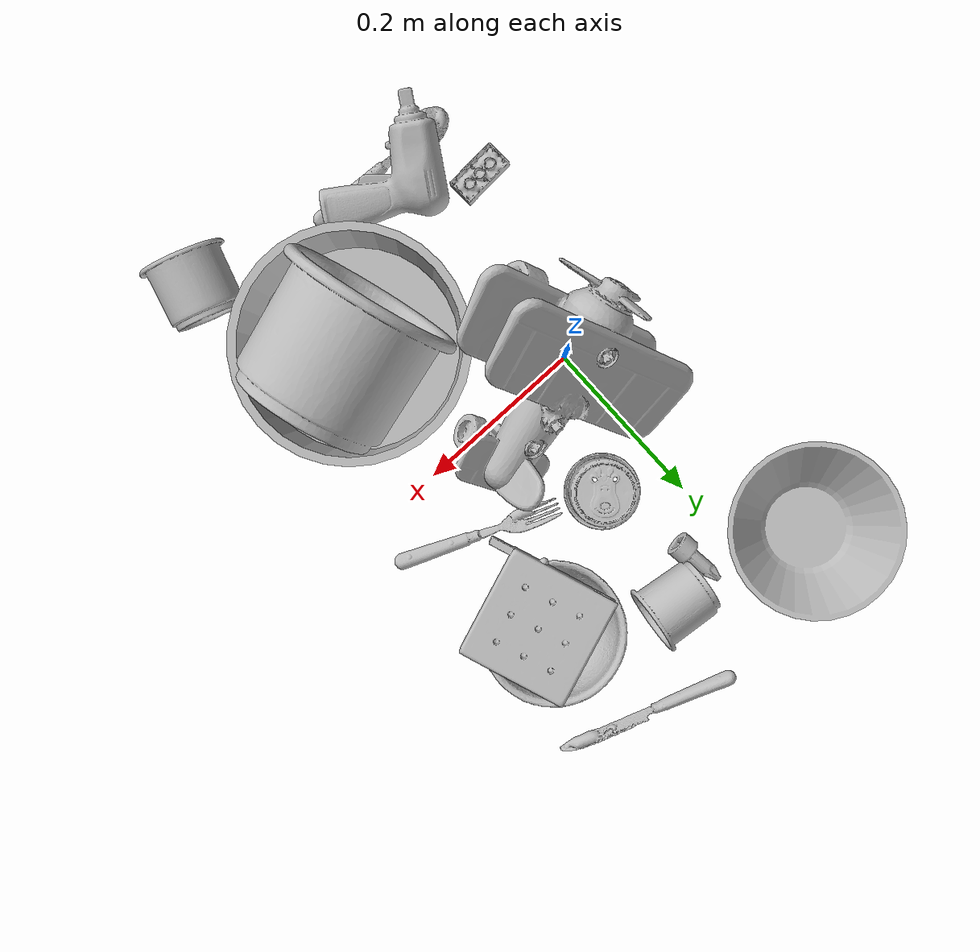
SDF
<sdf version="1.4">
  <world name="default">
    <light name="light1" type="point">
      <pose>0 0 1 0 0 0</pose>
      <diffuse>3 3 3 1</diffuse>
      <specular>3 3 3 1</specular>
    </light>
    <light name="light2" type="point">
      <pose>0 0.5 2 0 0 0</pose>
      <diffuse>1 1 1 1</diffuse>
      <specular>1 1 1 1</specular>
    </light>
    <light name="light3" type="point">
      <pose>0 0.5 2 0 0 0</pose>
      <diffuse>3 3 3 1</diffuse>
      <specular>3 3 3 1</specular>
    </light>
    <scene>
      <ambient>0.7 0.7 0.7</ambient>
    </scene>
    <model name="plate1">
      <link name="link_plate1">
        <collision name="default">
          <geometry>
            <mesh>
              <uri>model://pan_tefal/collision_meshes/collision.obj</uri>
              <scale>1.0 1.0 1.0</scale>
            </mesh>
          </geometry>
          <surface>
            <friction>
              <ode>
                <mu>0.5</mu>
                <mu2>0.5</mu2>
              </ode>
            </friction>
          <contact>
        <ode>
            <max_vel>0</max_vel>
            <min_depth>0.0001</min_depth>
            <kp>1e8</kp>
        </ode>
    </contact></surface>
        </collision>
        <visual name="default">
          <geometry>
            <mesh>
              <uri>model://pan_tefal/visual_meshes/visual.dae</uri>
              <scale>1.0 1.0 1.0</scale>
            </mesh>
          </geometry>
        </visual>
        <inertial>
          <mass>1.2414644956588745</mass>
          <pose>-0.0001800298341549933 3.278589065303095e-05 -0.00851493515074253 0.0008190165640447202 -0.0003301348973125405 -0.33185319573483557</pose>
          <inertia>
            <ixx>0.00856977</ixx>
            <iyy>0.008625018</iyy>
            <izz>0.015775295</izz>
            <ixy>0</ixy>
            <ixz>0</ixz>
            <iyz>0</iyz>
          </inertia>
        </inertial>
      </link>
      <pose>0.16648545861244202 -0.16408967971801758 0.03804996982216835 5.438720893274273e-07 -2.2654504921038066e-07 1.252859218004752</pose>
    </model>
    <model name="cup1">
      <link name="link_cup1">
        <collision name="default">
          <geometry>
            <mesh>
              <uri>model://j_cups/collision_meshes/collision.obj</uri>
              <scale>2.0 2.0 2.0</scale>
            </mesh>
          </geometry>
          <surface>
            <friction>
              <ode>
                <mu>0.5</mu>
                <mu2>0.5</mu2>
              </ode>
            </friction>
          <contact>
        <ode>
            <max_vel>0</max_vel>
            <min_depth>0.0001</min_depth>
            <kp>1e8</kp>
        </ode>
    </contact></surface>
        </collision>
        <visual name="default">
          <geometry>
            <mesh>
              <uri>model://j_cups/visual_meshes/visual.dae</uri>
              <scale>2.0 2.0 2.0</scale>
            </mesh>
          </geometry>
        </visual>
        <inertial>
          <mass>0.42814481258392334</mass>
          <pose>0.0012329709716141224 0.0010797895956784487 -0.002695801667869091 0.030303634199985552 0.037580068488308346 0.43868666904956827</pose>
          <inertia>
            <ixx>0.0025146077</ixx>
            <iyy>0.0025407567</iyy>
            <izz>0.0028988216</izz>
            <ixy>0</ixy>
            <ixz>0</ixz>
            <iyz>0</iyz>
          </inertia>
        </inertial>
      </link>
      <pose>0.18087667226791382 -0.15936565399169922 0.10116539150476456 -1.4303504968262837 -0.5524498892131489 1.7725393576955315</pose>
    </model>
    <model name="silverware1">
      <link name="link_silverware1">
        <collision name="default">
          <geometry>
            <mesh>
              <uri>model://fork/collision_meshes/collision.obj</uri>
              <scale>1.0 1.0 1.0</scale>
            </mesh>
          </geometry>
          <surface>
            <friction>
              <ode>
                <mu>0.5</mu>
                <mu2>0.5</mu2>
              </ode>
            </friction>
          <contact>
        <ode>
            <max_vel>0</max_vel>
            <min_depth>0.0001</min_depth>
            <kp>1e8</kp>
        </ode>
    </contact></surface>
        </collision>
        <visual name="default">
          <geometry>
            <mesh>
              <uri>model://fork/visual_meshes/visual.dae</uri>
              <scale>1.0 1.0 1.0</scale>
            </mesh>
          </geometry>
        </visual>
        <inertial>
          <mass>0.013809523545205593</mass>
          <pose>-0.029570044949650764 0.0004658822435885668 0.00032188615296036005 -0.013551743215227608 -0.010977837587661193 0.014453899243146438</pose>
          <inertia>
            <ixx>4.84102e-07</ixx>
            <iyy>3.6052697e-05</iyy>
            <izz>3.6269223e-05</izz>
            <ixy>0</ixy>
            <ixz>0</ixz>
            <iyz>0</iyz>
          </inertia>
        </inertial>
      </link>
      <pose>0.20794549584388733 0.08325665444135666 0.0056887962855398655 -0.17729976335279135 0.02532673078226954 2.7370059952573818</pose>
    </model>
    <model name="silverware2">
      <link name="link_silverware2">
        <collision name="default">
          <geometry>
            <mesh>
              <uri>model://knife/collision_meshes/collision.obj</uri>
              <scale>1.0 1.0 1.0</scale>
            </mesh>
          </geometry>
          <surface>
            <friction>
              <ode>
                <mu>0.5</mu>
                <mu2>0.5</mu2>
              </ode>
            </friction>
          <contact>
        <ode>
            <max_vel>0</max_vel>
            <min_depth>0.0001</min_depth>
            <kp>1e8</kp>
        </ode>
    </contact></surface>
        </collision>
        <visual name="default">
          <geometry>
            <mesh>
              <uri>model://knife/visual_meshes/visual.dae</uri>
              <scale>1.0 1.0 1.0</scale>
            </mesh>
          </geometry>
        </visual>
        <inertial>
          <mass>0.021972408518195152</mass>
          <pose>-0.023785250261425972 0.0015275123296305537 5.0620161346159875e-05 0.07305788583029697 0.01724841890740089 -0.007409824444555058</pose>
          <inertia>
            <ixx>6.2366604e-07</ixx>
            <iyy>8.441444e-05</iyy>
            <izz>8.46153e-05</izz>
            <ixy>0</ixy>
            <ixz>0</ixz>
            <iyz>0</iyz>
          </inertia>
        </inertial>
      </link>
      <pose>0.19863082468509674 0.36080843210220337 0.009939782321453094 -2.1810452025325824 0.0024265576804842807 -0.32318146778667384</pose>
    </model>
    <model name="silverware3">
      <link name="link_silverware3">
        <collision name="default">
          <geometry>
            <mesh>
              <uri>model://spoon/collision_meshes/collision.obj</uri>
              <scale>1.0 1.0 1.0</scale>
            </mesh>
          </geometry>
          <surface>
            <friction>
              <ode>
                <mu>0.5</mu>
                <mu2>0.5</mu2>
              </ode>
            </friction>
          <contact>
        <ode>
            <max_vel>0</max_vel>
            <min_depth>0.0001</min_depth>
            <kp>1e8</kp>
        </ode>
    </contact></surface>
        </collision>
        <visual name="default">
          <geometry>
            <mesh>
              <uri>model://spoon/visual_meshes/visual.dae</uri>
              <scale>1.0 1.0 1.0</scale>
            </mesh>
          </geometry>
        </visual>
        <inertial>
          <mass>0.026694269850850105</mass>
          <pose>-0.005526325199753046 -0.0016034168656915426 -0.0007271653739735484 0.035216710718480135 -0.03906584501417282 0.00615060951780049</pose>
          <inertia>
            <ixx>1.484779e-06</ixx>
            <iyy>0.000101570804</iyy>
            <izz>0.000102303035</izz>
            <ixy>0</ixy>
            <ixz>0</ixz>
            <iyz>0</iyz>
          </inertia>
        </inertial>
      </link>
      <pose>0.009705426171422005 -0.29567524790763855 0.010400155559182167 -2.8619917878287016 -0.06313973614583138 3.1040030368080855</pose>
    </model>
    <model name="cup3">
      <link name="link_cup3">
        <collision name="default">
          <geometry>
            <mesh>
              <uri>model://f_cups/collision_meshes/collision.obj</uri>
              <scale>1.0 1.0 1.0</scale>
            </mesh>
          </geometry>
          <surface>
            <friction>
              <ode>
                <mu>0.5</mu>
                <mu2>0.5</mu2>
              </ode>
            </friction>
          <contact>
        <ode>
            <max_vel>0</max_vel>
            <min_depth>0.0001</min_depth>
            <kp>1e8</kp>
        </ode>
    </contact></surface>
        </collision>
        <visual name="default">
          <geometry>
            <mesh>
              <uri>model://f_cups/visual_meshes/visual.dae</uri>
              <scale>1.0 1.0 1.0</scale>
            </mesh>
          </geometry>
        </visual>
        <inertial>
          <mass>0.09255705773830414</mass>
          <pose>-0.0031714672222733498 -0.0006240062648430467 -0.0036555363330990076 0.7862294428046025 -0.26079256257201844 -0.18237393521905715</pose>
          <inertia>
            <ixx>8.700612e-05</ixx>
            <iyy>9.127041e-05</iyy>
            <izz>9.501506e-05</izz>
            <ixy>0</ixy>
            <ixz>0</ixz>
            <iyz>0</iyz>
          </inertia>
        </inertial>
      </link>
      <pose>0.09079916775226593 0.28609856963157654 0.037031300365924835 1.3153853569367078 -1.1782103471794065 1.6813008243476948</pose>
    </model>
    <model name="cup4">
      <link name="link_cup4">
        <collision name="default">
          <geometry>
            <mesh>
              <uri>model://g_cups/collision_meshes/collision.obj</uri>
              <scale>1.0 1.0 1.0</scale>
            </mesh>
          </geometry>
          <surface>
            <friction>
              <ode>
                <mu>0.5</mu>
                <mu2>0.5</mu2>
              </ode>
            </friction>
          <contact>
        <ode>
            <max_vel>0</max_vel>
            <min_depth>0.0001</min_depth>
            <kp>1e8</kp>
        </ode>
    </contact></surface>
        </collision>
        <visual name="default">
          <geometry>
            <mesh>
              <uri>model://g_cups/visual_meshes/visual.dae</uri>
              <scale>1.0 1.0 1.0</scale>
            </mesh>
          </geometry>
        </visual>
        <inertial>
          <mass>0.09045539051294327</mass>
          <pose>-0.0007946272380650043 -4.206356970826164e-05 -0.0021329366136342287 -0.21382427470227655 -0.31410603394020525 0.31120189460551634</pose>
          <inertia>
            <ixx>0.000105581705</ixx>
            <iyy>0.000105222556</iyy>
            <izz>0.000109364446</izz>
            <ixy>0</ixy>
            <ixz>0</ixz>
            <iyz>0</iyz>
          </inertia>
        </inertial>
      </link>
      <pose>0.06979312747716904 0.1404975801706314 0.03711602836847305 3.1415925855718103 1.772134490742221e-08 2.534139954054383</pose>
    </model>
    <model name="cup5">
      <link name="link_cup5">
        <collision name="default">
          <geometry>
            <mesh>
              <uri>model://i_cups/collision_meshes/collision.obj</uri>
              <scale>1.0 1.0 1.0</scale>
            </mesh>
          </geometry>
          <surface>
            <friction>
              <ode>
                <mu>0.5</mu>
                <mu2>0.5</mu2>
              </ode>
            </friction>
          <contact>
        <ode>
            <max_vel>0</max_vel>
            <min_depth>0.0001</min_depth>
            <kp>1e8</kp>
        </ode>
    </contact></surface>
        </collision>
        <visual name="default">
          <geometry>
            <mesh>
              <uri>model://i_cups/visual_meshes/visual.dae</uri>
              <scale>1.0 1.0 1.0</scale>
            </mesh>
          </geometry>
        </visual>
        <inertial>
          <mass>0.0815454050898552</mass>
          <pose>0.0001123997790273279 0.00016797320859041065 -0.0008579009445384145 -0.02898318353055437 -0.03987301779891007 -0.3459082462056558</pose>
          <inertia>
            <ixx>0.0001129008</ixx>
            <iyy>0.000113895556</iyy>
            <izz>0.00012618494</izz>
            <ixy>0</ixy>
            <ixz>0</ixz>
            <iyz>0</iyz>
          </inertia>
        </inertial>
      </link>
      <pose>0.2516532242298126 -0.32863861322402954 0.04495322331786156 -1.1347544437653618 -1.2680529969392238 2.414473346986837</pose>
    </model>
    <model name="bowl1">
      <link name="link_bowl1">
        <collision name="default">
          <geometry>
            <mesh>
              <uri>model://bowl/collision_meshes/collision.obj</uri>
              <scale>1.0 1.0 1.0</scale>
            </mesh>
          </geometry>
          <surface>
            <friction>
              <ode>
                <mu>0.5</mu>
                <mu2>0.5</mu2>
              </ode>
            </friction>
          <contact>
        <ode>
            <max_vel>0</max_vel>
            <min_depth>0.0001</min_depth>
            <kp>1e8</kp>
        </ode>
    </contact></surface>
        </collision>
        <visual name="default">
          <geometry>
            <mesh>
              <uri>model://bowl/visual_meshes/visual.dae</uri>
              <scale>1.0 1.0 1.0</scale>
            </mesh>
          </geometry>
        </visual>
        <inertial>
          <mass>0.1349102407693863</mass>
          <pose>0.00020445192058105022 -0.0010302069131284952 -0.0008042648551054299 -0.01576408127006171 0.01454679335072616 0.7140405111038781</pose>
          <inertia>
            <ixx>0.00030989948</ixx>
            <iyy>0.00030297515</iyy>
            <izz>0.0005213576</izz>
            <ixy>0</ixy>
            <ixz>0</ixz>
            <iyz>0</iyz>
          </inertia>
        </inertial>
      </link>
      <pose>0.2144043892621994 0.21765992045402527 0.027798783034086227 0.000464088204176298 -0.00013592508594856522 1.27194447873387</pose>
    </model>
    <model name="bowl2">
      <link name="link_bowl2">
        <collision name="default">
          <geometry>
            <mesh>
              <uri>model://bowl_a/collision_meshes/collision.obj</uri>
              <scale>1.0 1.0 1.0</scale>
            </mesh>
          </geometry>
          <surface>
            <friction>
              <ode>
                <mu>0.5</mu>
                <mu2>0.5</mu2>
              </ode>
            </friction>
          <contact>
        <ode>
            <max_vel>0</max_vel>
            <min_depth>0.0001</min_depth>
            <kp>1e8</kp>
        </ode>
    </contact></surface>
        </collision>
        <visual name="default">
          <geometry>
            <mesh>
              <uri>model://bowl_a/visual_meshes/visual.dae</uri>
              <scale>1.0 1.0 1.0</scale>
            </mesh>
          </geometry>
        </visual>
        <inertial>
          <mass>0.4816342294216156</mass>
          <pose>0.000278677063761279 4.73155923828017e-05 -0.0013765296898782253 -0.0009805427744981278 -0.0010938171301827632 -0.19123023792191385</pose>
          <inertia>
            <ixx>0.0013712347</ixx>
            <iyy>0.0013796532</iyy>
            <izz>0.0024387941</izz>
            <ixy>0</ixy>
            <ixz>0</ixz>
            <iyz>0</iyz>
          </inertia>
        </inertial>
      </link>
      <pose>-0.07426609843969345 0.3261357545852661 0.030382996425032616 1.4104390556532453e-08 5.079881473073538e-09 1.2020205637261134</pose>
    </model>
    <model name="toy1">
      <link name="link_toy1">
        <collision name="default">
          <geometry>
            <mesh>
              <uri>model://a_toy_airplane/collision_meshes/collision.obj</uri>
              <scale>1.0 1.0 1.0</scale>
            </mesh>
          </geometry>
          <surface>
            <friction>
              <ode>
                <mu>0.5</mu>
                <mu2>0.5</mu2>
              </ode>
            </friction>
          <contact>
        <ode>
            <max_vel>0</max_vel>
            <min_depth>0.0001</min_depth>
            <kp>1e8</kp>
        </ode>
    </contact></surface>
        </collision>
        <visual name="default">
          <geometry>
            <mesh>
              <uri>model://a_toy_airplane/visual_meshes/visual.dae</uri>
              <scale>1.0 1.0 1.0</scale>
            </mesh>
          </geometry>
        </visual>
        <inertial>
          <mass>1.6936675310134888</mass>
          <pose>0.025165095925331116 -0.0037073225248605013 -0.0011962444987148046 -0.01201699252327453 -0.146634996228158 0.004149091382990828</pose>
          <inertia>
            <ixx>0.0061505185</ixx>
            <iyy>0.008962553</iyy>
            <izz>0.010494047</izz>
            <ixy>0</ixy>
            <ixz>0</ixz>
            <iyz>0</iyz>
          </inertia>
        </inertial>
      </link>
      <pose>0.039020005613565445 0.015964029356837273 0.10047237575054169 0.6892507837064439 -0.1263163803095683 -2.7495702318925463</pose>
    </model>
    <model name="toy2">
      <link name="link_toy2">
        <collision name="default">
          <geometry>
            <mesh>
              <uri>model://c_lego_duplo/collision_meshes/collision.obj</uri>
              <scale>1.0 1.0 1.0</scale>
            </mesh>
          </geometry>
          <surface>
            <friction>
              <ode>
                <mu>0.5</mu>
                <mu2>0.5</mu2>
              </ode>
            </friction>
          <contact>
        <ode>
            <max_vel>0</max_vel>
            <min_depth>0.0001</min_depth>
            <kp>1e8</kp>
        </ode>
    </contact></surface>
        </collision>
        <visual name="default">
          <geometry>
            <mesh>
              <uri>model://c_lego_duplo/visual_meshes/visual.dae</uri>
              <scale>1.0 1.0 1.0</scale>
            </mesh>
          </geometry>
        </visual>
        <inertial>
          <mass>0.01636073924601078</mass>
          <pose>0.000316459103487432 0.0001946457487065345 0.001045315177179873 -0.01152079658800189 0.005900071110555828 0.03110036538654021</pose>
          <inertia>
            <ixx>6.295917e-06</ixx>
            <iyy>2.0111436e-06</iyy>
            <izz>7.357428e-06</izz>
            <ixy>0</ixy>
            <ixz>0</ixz>
            <iyz>0</iyz>
          </inertia>
        </inertial>
      </link>
      <pose>-0.06718049943447113 -0.21742434799671173 0.011916379444301128 -3.135122320303831 -0.00043240776495419807 1.6581522135227504</pose>
    </model>
    <model name="toy3">
      <link name="link_toy3">
        <collision name="default">
          <geometry>
            <mesh>
              <uri>model://nine_hole_peg_test/collision_meshes/collision.obj</uri>
              <scale>1.0 1.0 1.0</scale>
            </mesh>
          </geometry>
          <surface>
            <friction>
              <ode>
                <mu>0.5</mu>
                <mu2>0.5</mu2>
              </ode>
            </friction>
          <contact>
        <ode>
            <max_vel>0</max_vel>
            <min_depth>0.0001</min_depth>
            <kp>1e8</kp>
        </ode>
    </contact></surface>
        </collision>
        <visual name="default">
          <geometry>
            <mesh>
              <uri>model://nine_hole_peg_test/visual_meshes/visual.dae</uri>
              <scale>1.0 1.0 1.0</scale>
            </mesh>
          </geometry>
        </visual>
        <inertial>
          <mass>0.9464474320411682</mass>
          <pose>-0.004617386497557163 -0.009647613391280174 2.646068787726108e-05 -0.0014666793204268175 0.0007194166079670136 -0.6342420609245715</pose>
          <inertia>
            <ixx>0.0014799263</ixx>
            <iyy>0.0013817915</iyy>
            <izz>0.002593267</izz>
            <ixy>0</ixy>
            <ixz>0</ixz>
            <iyz>0</iyz>
          </inertia>
        </inertial>
      </link>
      <pose>0.2177213579416275 0.1859222650527954 0.07536756247282028 0.02482431612659408 0.0072110286403666716 -2.7926186352517908</pose>
    </model>
    <model name="toy4">
      <link name="link_toy4">
        <collision name="default">
          <geometry>
            <mesh>
              <uri>model://d_toy_airplane/collision_meshes/collision.obj</uri>
              <scale>1.0 1.0 1.0</scale>
            </mesh>
          </geometry>
          <surface>
            <friction>
              <ode>
                <mu>0.5</mu>
                <mu2>0.5</mu2>
              </ode>
            </friction>
          <contact>
        <ode>
            <max_vel>0</max_vel>
            <min_depth>0.0001</min_depth>
            <kp>1e8</kp>
        </ode>
    </contact></surface>
        </collision>
        <visual name="default">
          <geometry>
            <mesh>
              <uri>model://d_toy_airplane/visual_meshes/visual.dae</uri>
              <scale>1.0 1.0 1.0</scale>
            </mesh>
          </geometry>
        </visual>
        <inertial>
          <mass>0.021776849403977394</mass>
          <pose>9.410295024281368e-05 -5.809321373817511e-05 -0.011728097684681416 0.0002661671660100631 0.004679022103859929 0.519291232465637</pose>
          <inertia>
            <ixx>6.5282748e-06</ixx>
            <iyy>6.5331997e-06</iyy>
            <izz>1.9709291e-06</izz>
            <ixy>0</ixy>
            <ixz>0</ixz>
            <iyz>0</iyz>
          </inertia>
        </inertial>
      </link>
      <pose>0.04224105179309845 0.2709033489227295 0.011770745739340782 1.7947109838141415 0.4985190744138352 -2.9054173391353255</pose>
    </model>
    <model name="toy5">
      <link name="link_toy5">
        <collision name="default">
          <geometry>
            <mesh>
              <uri>model://b_toy_airplane/collision_meshes/collision.obj</uri>
              <scale>1.0 1.0 1.0</scale>
            </mesh>
          </geometry>
          <surface>
            <friction>
              <ode>
                <mu>0.5</mu>
                <mu2>0.5</mu2>
              </ode>
            </friction>
          <contact>
        <ode>
            <max_vel>0</max_vel>
            <min_depth>0.0001</min_depth>
            <kp>1e8</kp>
        </ode>
    </contact></surface>
        </collision>
        <visual name="default">
          <geometry>
            <mesh>
              <uri>model://b_toy_airplane/visual_meshes/visual.dae</uri>
              <scale>1.0 1.0 1.0</scale>
            </mesh>
          </geometry>
        </visual>
        <inertial>
          <mass>0.25237053632736206</mass>
          <pose>0.00508136348798871 0.004015584476292133 0.00954306498169899 -0.04001808288480986 -0.0402218063825515 -0.5601503558886168</pose>
          <inertia>
            <ixx>0.00046853055</ixx>
            <iyy>0.00018727628</iyy>
            <izz>0.0005828988</izz>
            <ixy>0</ixy>
            <ixz>0</ixz>
            <iyz>0</iyz>
          </inertia>
        </inertial>
      </link>
      <pose>0.010363016277551651 -0.2663251757621765 0.043279699981212616 -3.0553150874994026 -0.2760043801639131 -2.130603423799199</pose>
    </model>
  <physics type="ode">
      <max_contacts>50</max_contacts>
      <ode>
        <solver>
          <type>quick</type>
          <iters>75</iters>
        </solver>
        <constraints>
          <contact_max_correcting_vel>0</contact_max_correcting_vel>
          <contact_surface_layer>0</contact_surface_layer>
        </constraints>
      </ode>
    </physics></world>
</sdf>
